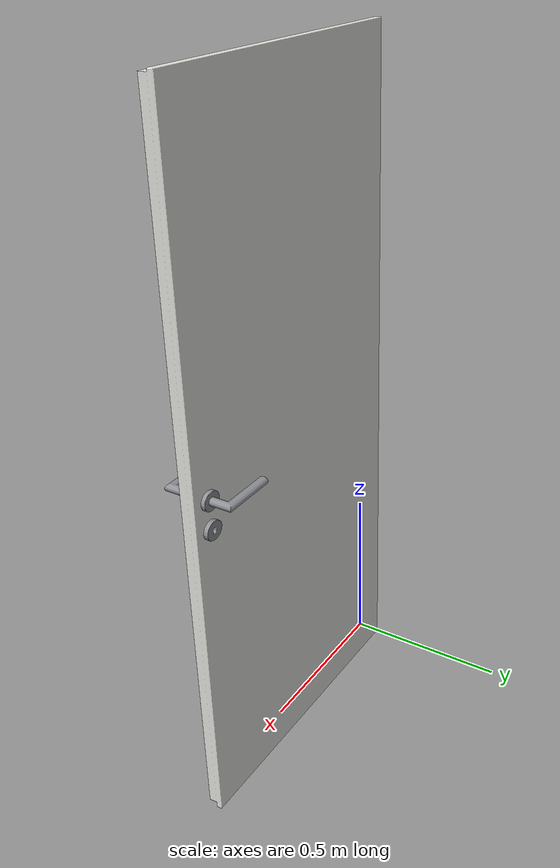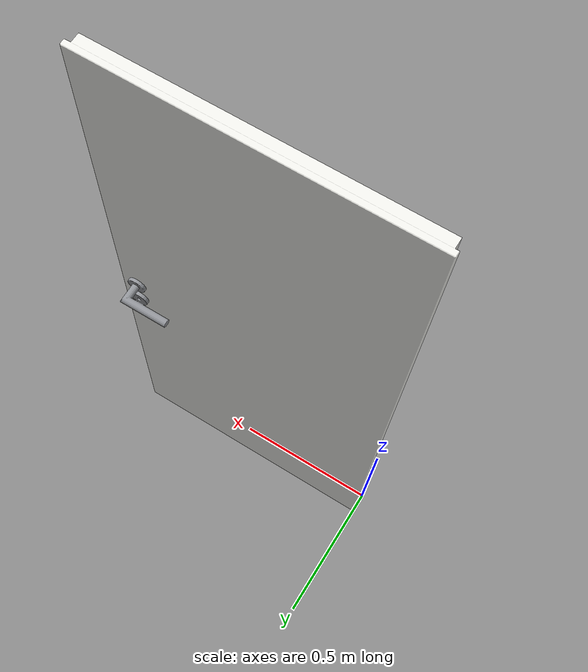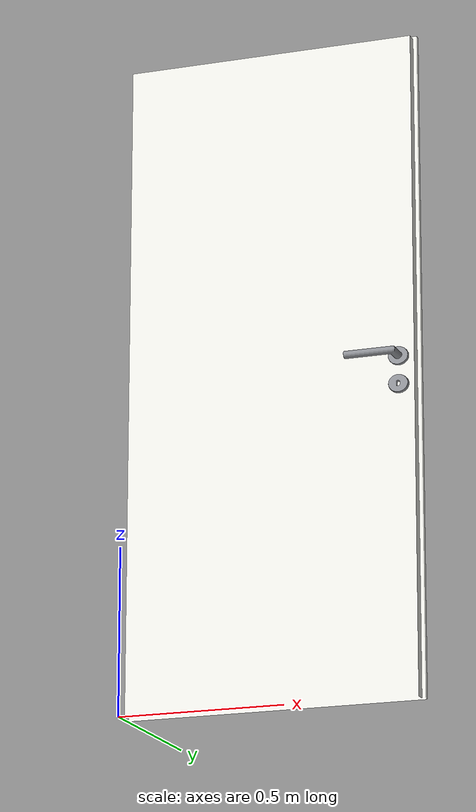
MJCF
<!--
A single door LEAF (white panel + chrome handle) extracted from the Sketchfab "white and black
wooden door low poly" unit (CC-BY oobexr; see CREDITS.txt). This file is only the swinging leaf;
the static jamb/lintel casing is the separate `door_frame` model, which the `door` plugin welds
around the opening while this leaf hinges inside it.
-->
<mujoco model="door">
  <compiler meshdir="meshes" texturedir="meshes"/>
  <asset>
    <mesh name="door_panel" file="door_panel.obj"/>
    <mesh name="door_handle" file="door_handle.obj"/>
    <material name="door_panel" rgba="0.90 0.90 0.88 1"/>
    <material name="door_handle" rgba="0.55 0.56 0.58 1" specular="0.6" shininess="0.6"/>
  </asset>
  <worldbody>
    <body name="leaf">
      <geom type="mesh" mesh="door_panel" material="door_panel"/>
      <geom type="mesh" mesh="door_handle" material="door_handle" contype="0" conaffinity="0"/>
    </body>
  </worldbody>
</mujoco>
